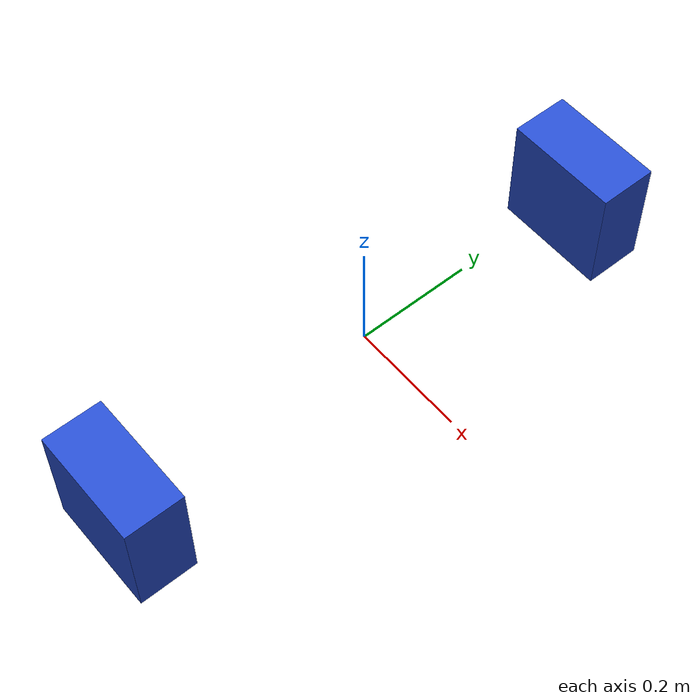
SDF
<?xml version="1.0" ?>
<sdf version="1.4">
  <model name="robot">
    <link name="root">
      <pose>0 0 0 0 0 0</pose>
    </link>
    <link name="gripper_l">
      <pose>0 -0.45 0 0 0 0</pose>
      <self_collide>true</self_collide>
      <inertial>
        <pose>0 0 0 0 0 0</pose>
        <inertia>
          <ixx>6.667</ixx>
          <ixy>0</ixy>
          <ixz>0</ixz>
          <iyy>6.667</iyy>
          <iyz>0</iyz>
          <izz>6.667</izz>
        </inertia>
        <mass>1.0</mass>
      </inertial>
      <collision name="gripper_l_col">
        <pose>0 0 0 0 0 0</pose>
        <geometry>
          <box>
            <size>0.2 0.1 0.2</size>
          </box>
        </geometry>
        <surface>
          <friction>
            <ode>
              <mu>1e8</mu>          <!-- DO NOT MODIFY -->
              <mu2>1e8</mu2>        <!-- DO NOT MODIFY -->
              <fdir1>0 0 0</fdir1>
              <slip1>0.0</slip1>
              <slip2>0.0</slip2>
            </ode>
            <bullet>
              <friction>1e8</friction>                  <!-- DO NOT MODIFY -->
              <friction2>1e8</friction2>                <!-- DO NOT MODIFY -->
              <fdir1>0 0 0</fdir1>
              <rolling_friction>1e8</rolling_friction>  <!-- DO NOT MODIFY -->
            </bullet>
          </friction>
          <contact>
            <ode>
              <soft_cfm>0</soft_cfm>
              <soft_erp>0.2</soft_erp>
              <kp>1e12</kp>
              <kd>1e8</kd>
              <max_vel>0.01</max_vel>
              <min_depth>0.002</min_depth>
            </ode>
            <bullet>
              <soft_cfm>0</soft_cfm>
              <soft_erp>0.2</soft_erp>
              <kp>1e12</kp>
              <kd>1.0</kd>
              <split_impulse>1</split_impulse>
              <split_impulse_penetration_threshold>-0.01</split_impulse_penetration_threshold>
            </bullet>
          </contact>
        </surface>
      </collision>
      <visual name="gripper_l_vis">
        <pose>0 0 0 0 0 0</pose>
        <geometry>
          <box>
            <size>0.2 0.1 0.2</size>
          </box>
        </geometry>
        <material>
          <script>
            <uri>file://media/materials/scripts/gazebo.material</uri>
            <name>Gazebo/Blue</name>
          </script>
        </material>
      </visual>
    </link>

    <link name="gripper_r">
      <pose>0 0.45 0 0 0 0</pose>
      <self_collide>true</self_collide>
      <inertial>
        <pose>0 0 0 0 0 0</pose>
        <inertia>
          <ixx>6.667</ixx>
          <ixy>0</ixy>
          <ixz>0</ixz>
          <iyy>6.667</iyy>
          <iyz>0</iyz>
          <izz>6.667</izz>
        </inertia>
        <mass>1.0</mass>
      </inertial>
      <collision name="gripper_r_col">
        <pose>0 0 0 0 0 0</pose>
        <geometry>
          <box>
            <size>0.2 0.1 0.2</size>
          </box>
        </geometry>
        <surface>
          <friction>
            <ode>
              <mu>1e8</mu>          <!-- DO NOT MODIFY -->
              <mu2>1e8</mu2>        <!-- DO NOT MODIFY -->
              <fdir1>0 0 0</fdir1>
              <slip1>0.0</slip1>
              <slip2>0.0</slip2>
            </ode>
            <bullet>
              <friction>1e8</friction>                  <!-- DO NOT MODIFY -->
              <friction2>1e8</friction2>                <!-- DO NOT MODIFY -->
              <fdir1>0 0 0</fdir1>
              <rolling_friction>1e8</rolling_friction>  <!-- DO NOT MODIFY -->
            </bullet>
          </friction>
          <contact>
            <ode>
              <soft_cfm>0</soft_cfm>
              <soft_erp>0.2</soft_erp>
              <kp>1e12</kp>
              <kd>1e8</kd>
              <max_vel>0.01</max_vel>
              <min_depth>0.002</min_depth>
            </ode>
            <bullet>
              <soft_cfm>0</soft_cfm>
              <soft_erp>0.2</soft_erp>
              <kp>1e12</kp>
              <kd>1.0</kd>
              <split_impulse>1</split_impulse>
              <split_impulse_penetration_threshold>-0.01</split_impulse_penetration_threshold>
            </bullet>
          </contact>
        </surface>
      </collision>
      <visual name="gripper_r_vis">
        <pose>0 0 0 0 0 0</pose>
        <geometry>
          <box>
            <size>0.2 0.1 0.2</size>
          </box>
        </geometry>
        <material>
          <script>
            <uri>file://media/materials/scripts/gazebo.material</uri>
            <name>Gazebo/Blue</name>
          </script>
        </material>
      </visual>
    </link>

    <joint name="fixed" type="revolute">
      <parent>world</parent>
      <child>root</child>
      <pose>0 0 0 0 0 0</pose>
      <axis>
        <xyz>0 0 1</xyz>
        <limit>
          <upper>0</upper>
          <lower>0</lower>
        </limit>
        <dynamics>
          <damping>1.0</damping>
        </dynamics>
      </axis>
      <physics>
        <ode>
          <cfm_damping>1</cfm_damping>
        </ode>
      </physics>
    </joint>

    <joint name="actuator_l" type="prismatic">
      <parent>root</parent>
      <child>gripper_l</child>
      <axis>
        <dynamics>
          <damping>10.0</damping>
          <friction>0.0</friction>
        </dynamics>
        <xyz>0 1 0</xyz>
        <limit>
          <lower>0</lower>
          <upper>0.4</upper>
        </limit>
      </axis>
      <physics>
        <ode>
          <implicit_spring_damper>1</implicit_spring_damper>
        </ode>
      </physics>
    </joint>

    <joint name="actuator_r" type="prismatic">
      <parent>root</parent>
      <child>gripper_r</child>
      <axis>
        <dynamics>
          <damping>10.0</damping>
          <friction>0.0</friction>
        </dynamics>
        <xyz>0 1 0</xyz>
        <limit>
          <lower>-0.4</lower>
          <upper>0</upper>
        </limit>
      </axis>
      <physics>
        <ode>
          <implicit_spring_damper>1</implicit_spring_damper>
        </ode>
      </physics>
    </joint>

    <plugin name='multiblock-controller' filename='libmultiblock-controller.so'>
    </plugin>

  </model>
</sdf>
